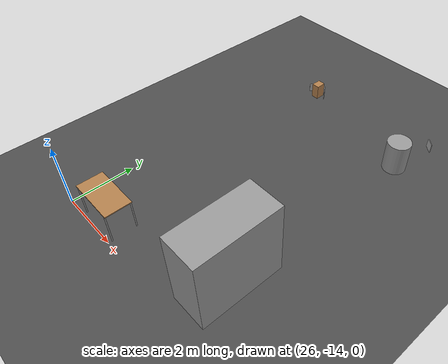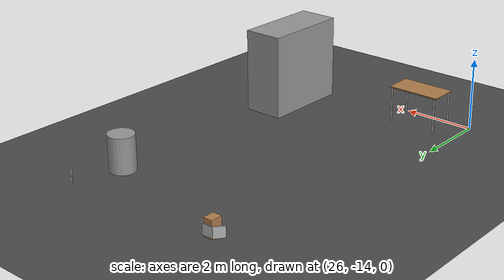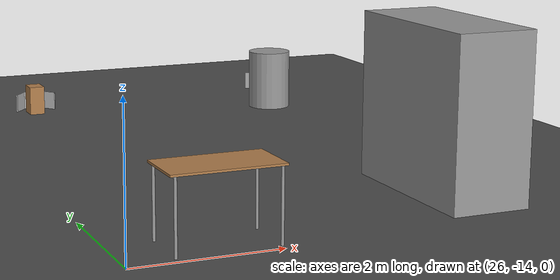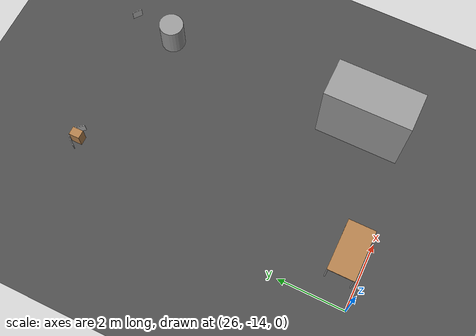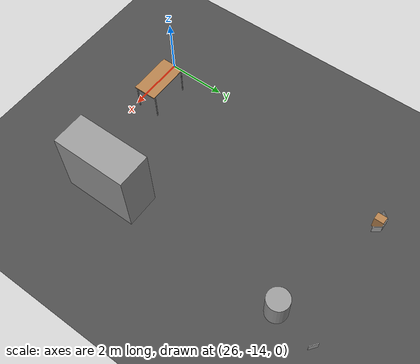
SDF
<sdf version="1.6">
 <world name="default">
  <model name="ground_plane">
   <static>1</static>
   <link name="link">
    <collision name="collision">
     <geometry><plane><normal>0 0 1</normal><size>100 100</size></plane></geometry>
     <surface><friction><ode><mu>100</mu><mu2>50</mu2></ode></friction></surface>
    </collision>
    <visual name="visual">
     <cast_shadows>0</cast_shadows>
     <geometry><plane><normal>0 0 1</normal><size>100 100</size></plane></geometry>
     <material>
      <script><uri>file://media/materials/scripts/gazebo.material</uri><name>Gazebo/DarkGrey</name></script>
     </material>
    </visual>
   </link>
  </model>
  <model name="unit_cylinder_clone_2">
   <pose>31.3402 -6.05699 0.499992 0 0 -0.001355</pose>
   <link name="link">
    <inertial>
     <mass>1</mass>
     <inertia><ixx>0.145833</ixx><ixy>0</ixy><ixz>0</ixz><iyy>0.145833</iyy><iyz>0</iyz><izz>0.125</izz></inertia>
    </inertial>
    <collision name="collision">
     <geometry><cylinder><radius>0.361483</radius><length>1</length></cylinder></geometry>
    </collision>
    <visual name="visual">
     <geometry><cylinder><radius>0.361483</radius><length>1</length></cylinder></geometry>
     <material>
      <script><name>Gazebo/Grey</name><uri>file://media/materials/scripts/gazebo.material</uri></script>
     </material>
    </visual>
   </link>
  </model>
  <model name="unit_box_2_clone_2">
   <pose>31.0935 -12.4085 1.19041 0 -0 8.3e-05</pose>
   <link name="link">
    <inertial>
     <mass>1</mass>
     <inertia>
      <ixx>0.166667</ixx>
      <ixy>0</ixy>
      <ixz>0</ixz>
      <iyy>0.166667</iyy>
      <iyz>0</iyz>
      <izz>0.166667</izz>
     </inertia>
    </inertial>
    <collision name="collision"><geometry><box><size>1.13758 2.51147 2.38082</size></box></geometry></collision>
    <visual name="visual">
     <geometry><box><size>1.13758 2.51147 2.38082</size></box></geometry>
     <material>
      <script><name>Gazebo/Grey</name><uri>file://media/materials/scripts/gazebo.material</uri></script>
     </material>
    </visual>
   </link>
  </model>
  <model name="table_clone_2">
   <static>1</static>
   <link name="link">
    <collision name="surface">
     <pose>0 0 1 0 -0 0</pose>
     <geometry><box><size>1.5 0.8 0.03</size></box></geometry>
     <surface><friction><ode><mu>0.6</mu><mu2>0.6</mu2></ode></friction></surface>
    </collision>
    <visual name="visual1">
     <pose>0 0 1 0 -0 0</pose>
     <geometry><box><size>1.5 0.8 0.03</size></box></geometry>
     <material>
      <script><uri>file://media/materials/scripts/gazebo.material</uri><name>Gazebo/Wood</name></script>
     </material>
    </visual>
    <collision name="front_left_leg">
     <pose>0.68 0.38 0.5 0 -0 0</pose>
     <geometry><cylinder><radius>0.02</radius><length>1</length></cylinder></geometry>
    </collision>
    <visual name="front_left_leg">
     <pose>0.68 0.38 0.5 0 -0 0</pose>
     <geometry><cylinder><radius>0.02</radius><length>1</length></cylinder></geometry>
     <material>
      <script><uri>file://media/materials/scripts/gazebo.material</uri><name>Gazebo/Grey</name></script>
     </material>
    </visual>
    <collision name="front_right_leg">
     <pose>0.68 -0.38 0.5 0 -0 0</pose>
     <geometry><cylinder><radius>0.02</radius><length>1</length></cylinder></geometry>
    </collision>
    <visual name="front_right_leg">
     <pose>0.68 -0.38 0.5 0 -0 0</pose>
     <geometry><cylinder><radius>0.02</radius><length>1</length></cylinder></geometry>
     <material>
      <script><uri>file://media/materials/scripts/gazebo.material</uri><name>Gazebo/Grey</name></script>
     </material>
    </visual>
    <collision name="back_right_leg">
     <pose>-0.68 -0.38 0.5 0 -0 0</pose>
     <geometry><cylinder><radius>0.02</radius><length>1</length></cylinder></geometry>
    </collision>
    <visual name="back_right_leg">
     <pose>-0.68 -0.38 0.5 0 -0 0</pose>
     <geometry><cylinder><radius>0.02</radius><length>1</length></cylinder></geometry>
     <material>
      <script><uri>file://media/materials/scripts/gazebo.material</uri><name>Gazebo/Grey</name></script>
     </material>
    </visual>
    <collision name="back_left_leg">
     <pose>-0.68 0.38 0.5 0 -0 0</pose>
     <geometry><cylinder><radius>0.02</radius><length>1</length></cylinder></geometry>
    </collision>
    <visual name="back_left_leg">
     <pose>-0.68 0.38 0.5 0 -0 0</pose>
     <geometry><cylinder><radius>0.02</radius><length>1</length></cylinder></geometry>
     <material>
      <script><uri>file://media/materials/scripts/gazebo.material</uri><name>Gazebo/Grey</name></script>
     </material>
    </visual>
   </link>
   <pose>27.3277 -13.4925 0 0 -0 0</pose>
  </model>
  <model name="Support_box_wood_clone_1_clone_clone_2">
   <link name="link">
    <inertial>
     <mass>0.0406949</mass>
     <inertia>
      <ixx>0.00114102</ixx>
      <ixy>0</ixy>
      <ixz>0</ixz>
      <iyy>0.00102768</iyy>
      <iyz>0</iyz>
      <izz>0.000581951</izz>
     </inertia>
    </inertial>
    <pose>0.062754 0.860403 -0.243846 0 -0 0</pose>
    <visual name="visual">
     <geometry><box><size>0.252854 0.320175 0.483682</size></box></geometry>
     <material>
      <script><name>Gazebo/Wood</name><uri>file://media/materials/scripts/gazebo.material</uri></script>
      <shader type="vertex"><normal_map>__default__</normal_map></shader>
      <ambient>0.3 0.3 0.3 1</ambient>
      <diffuse>0.7 0.7 0.7 1</diffuse>
      <specular>0.01 0.01 0.01 1</specular>
      <emissive>0 0 0 1</emissive>
     </material>
    </visual>
    <visual name="ModelPreview_4::link::visual_1">
     <geometry><box><size>0.252854 0.320175 0.483682</size></box></geometry>
     <material>
      <script><name>Gazebo/Wood</name><uri>file://media/materials/scripts/gazebo.material</uri></script>
      <shader type="vertex"><normal_map>__default__</normal_map></shader>
      <ambient>0.3 0.3 0.3 1</ambient>
      <diffuse>0.7 0.7 0.7 1</diffuse>
      <specular>0.01 0.01 0.01 1</specular>
      <emissive>0 0 0 1</emissive>
     </material>
    </visual>
    <collision name="collision">
     <geometry><box><size>0.262854 0.320175 0.483683</size></box></geometry>
     <surface>
      <friction>
       <ode><mu>1</mu><mu2>1</mu2><fdir1>0 0 0</fdir1><slip1>0</slip1><slip2>0</slip2></ode>
       <torsional>
        <coefficient>1</coefficient>
        <patch_radius>0</patch_radius>
        <surface_radius>0</surface_radius>
        <use_patch_radius>1</use_patch_radius>
        <ode><slip>0</slip></ode>
       </torsional>
      </friction>
      <bounce><restitution_coefficient>0</restitution_coefficient><threshold>1e+06</threshold></bounce>
      <contact>
       <collide_without_contact>0</collide_without_contact>
       <collide_without_contact_bitmask>1</collide_without_contact_bitmask>
       <collide_bitmask>1</collide_bitmask>
       <ode>
        <soft_cfm>0</soft_cfm>
        <soft_erp>0.2</soft_erp>
        <kp>1e+13</kp>
        <kd>1</kd>
        <max_vel>0.01</max_vel>
        <min_depth>0</min_depth>
       </ode>
       <bullet>
        <split_impulse>1</split_impulse>
        <split_impulse_penetration_threshold>-0.01</split_impulse_penetration_threshold>
        <soft_cfm>0</soft_cfm>
        <soft_erp>0.2</soft_erp>
        <kp>1e+13</kp>
        <kd>1</kd>
       </bullet>
      </contact>
     </surface>
    </collision>
   </link>
   <static>0</static>
   <pose>27.1921 -5.92518 0.485688 -0 -0 -0.002144</pose>
  </model>
  <model name="Aruco tag201_clone_clone">
   <static>1</static>
   <link name="robot_link">
    <visual name="body_visual">
     <geometry><box><size>0.3 0.3 0.02</size></box></geometry>
     <material>
      <script><uri>model://tag_201/materials/scripts/tag.material</uri><name>aruco_tag_201</name></script>
     </material>
    </visual>
   </link>
   <pose>31.6316 -4.65958 0.2 -0.000103 1.57 0.909896</pose>
  </model>
  <model name="Aruco tag104">
   <static>1</static>
   <link name="robot_link">
    <visual name="body_visual">
     <geometry><box><size>0.3 0.3 0.02</size></box></geometry>
     <material>
      <script><uri>model://tag_104/materials/scripts/tag.material</uri><name>aruco_tag_104</name></script>
     </material>
    </visual>
   </link>
   <pose>27.2552 -4.89225 0.2 1.57 -0 0</pose>
  </model>
  <model name="Aruco tag104_clone">
   <static>1</static>
   <link name="robot_link">
    <visual name="body_visual">
     <geometry><box><size>0.3 0.3 0.02</size></box></geometry>
     <material>
      <script><uri>model://tag_104/materials/scripts/tag.material</uri><name>aruco_tag_104</name></script>
     </material>
    </visual>
   </link>
   <pose>27.503 -5.01183 0.2 1.57 -0 -0.909999</pose>
  </model>
  <model name="Aruco tag104_clone_0">
   <static>1</static>
   <link name="robot_link">
    <visual name="body_visual">
     <geometry><box><size>0.3 0.3 0.02</size></box></geometry>
     <material>
      <script><uri>model://tag_104/materials/scripts/tag.material</uri><name>aruco_tag_104</name></script>
     </material>
    </visual>
   </link>
   <pose>27.0093 -5.00983 0.2 1.57 -0 0.909999</pose>
  </model>
 </world>
</sdf>
